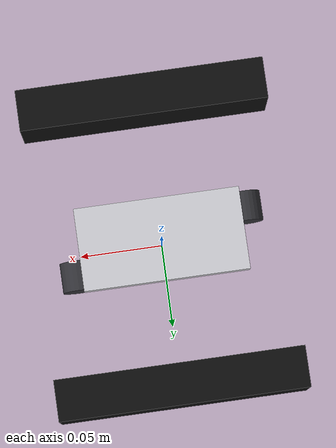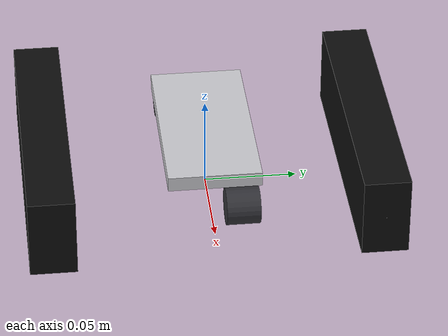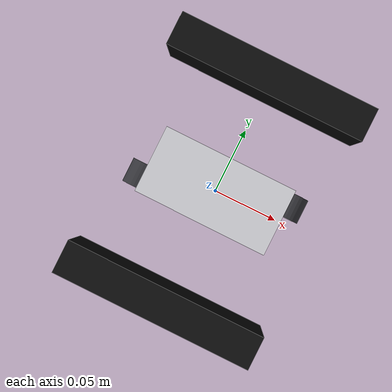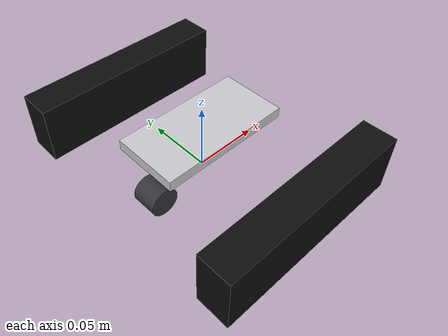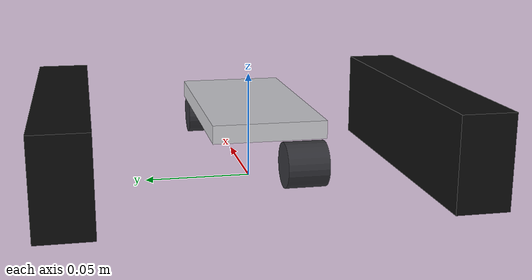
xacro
<?xml version="1.0"?>
<robot name="tank_car" xmlns:xacro="http://www.ros.org/wiki/xacro">

  <xacro:property name="pi" value="3.1415926535897931"/>

  <!-- Main dimensions (meters) -->
  <!-- Narrow center platform, with total vehicle footprint ~0.10 m wide x 0.15 m long -->
  <xacro:property name="body_length" value="0.10"/>
  <xacro:property name="body_width"  value="0.05"/>
  <xacro:property name="body_height" value="0.008"/>
  <xacro:property name="body_ground_clearance" value="0.030"/>

  <!-- Track + wheel geometry -->
  <xacro:property name="track_width"       value="0.025"/>
  <xacro:property name="wheel_radius"      value="0.022"/>
  <xacro:property name="wheel_thickness"   value="0.008"/>
  <xacro:property name="wheelbase"         value="0.106"/>
  <xacro:property name="track_loop_length" value="${wheelbase + 2.0*wheel_radius}"/>
  <xacro:property name="track_loop_height" value="${2.0*wheel_radius}"/>
  <xacro:property name="track_center_y"    value="${body_width/2.0 + track_width/2.0 + 0.05}"/>

  <!-- Derived positions -->
  <xacro:property name="body_center_z" value="${body_ground_clearance + body_height/2.0}"/>
  <xacro:property name="wheel_center_rel_z" value="${wheel_radius - body_center_z}"/>
  <xacro:property name="front_x" value="${ wheelbase/2.0}"/>
  <xacro:property name="rear_x"  value="${-wheelbase/2.0}"/>

  <!-- Decorative motors now tucked under the platform -->
  <xacro:property name="motor_radius" value="0.010"/>
  <xacro:property name="motor_length" value="0.018"/>
  <xacro:property name="motor_inset_y" value="${body_width/2.0 - motor_length/2.0 - 0.002}"/>
  <xacro:property name="motor_underbody_z" value="${-body_height/2.0 - motor_radius}"/>

  <!-- Masses -->
  <xacro:property name="body_mass"        value="0.40"/>
  <xacro:property name="wheel_mass"       value="0.03"/>
  <xacro:property name="track_mass"       value="0.05"/>
  <xacro:property name="motor_mass"       value="0.04"/>

  <!-- Materials -->
  <material name="silver">
    <color rgba="0.80 0.80 0.82 1.0"/>
  </material>
  <material name="dark_gray">
    <color rgba="0.20 0.20 0.22 1.0"/>
  </material>
  <material name="black">
    <color rgba="0.05 0.05 0.05 1.0"/>
  </material>

  <xacro:macro name="box_inertial" params="mass x y z">
    <inertial>
      <origin xyz="0 0 0" rpy="0 0 0"/>
      <mass value="${mass}"/>
      <inertia
        ixx="${mass*(y*y + z*z)/12.0}"
        ixy="0.0"
        ixz="0.0"
        iyy="${mass*(x*x + z*z)/12.0}"
        iyz="0.0"
        izz="${mass*(x*x + y*y)/12.0}"/>
    </inertial>
  </xacro:macro>

  <xacro:macro name="cylinder_inertial" params="mass radius length">
    <inertial>
      <!-- Cylinder axis is rotated onto the Y-axis to match the wheel axle direction -->
      <origin xyz="0 0 0" rpy="${pi/2} 0 0"/>
      <mass value="${mass}"/>
      <inertia
        ixx="${mass*(3.0*radius*radius + length*length)/12.0}"
        ixy="0.0"
        ixz="0.0"
        iyy="${mass*(3.0*radius*radius + length*length)/12.0}"
        iyz="0.0"
        izz="${0.5*mass*radius*radius}"/>
    </inertial>
  </xacro:macro>

  <xacro:macro name="wheel_link" params="name">
    <link name="${name}">
      <xacro:cylinder_inertial mass="${wheel_mass}" radius="${wheel_radius}" length="${wheel_thickness}"/>
      <visual>
        <origin xyz="0 0 0" rpy="${pi/2} 0 0"/>
        <geometry>
          <cylinder radius="${wheel_radius}" length="${wheel_thickness}"/>
        </geometry>
        <material name="silver"/>
      </visual>
      <collision>
        <origin xyz="0 0 0" rpy="${pi/2} 0 0"/>
        <geometry>
          <cylinder radius="${wheel_radius}" length="${wheel_thickness}"/>
        </geometry>
      </collision>
    </link>
  </xacro:macro>

  <xacro:macro name="track_link" params="name">
    <link name="${name}">
      <xacro:box_inertial mass="${track_mass}" x="${track_loop_length}" y="${track_width}" z="${track_loop_height}"/>
      <visual>
        <origin xyz="0 0 0" rpy="0 0 0"/>
        <geometry>
          <box size="${track_loop_length} ${track_width} ${track_loop_height}"/>
        </geometry>
        <material name="black"/>
      </visual>
      <collision>
        <origin xyz="0 0 0" rpy="0 0 0"/>
        <geometry>
          <box size="${track_loop_length} ${track_width} ${track_loop_height}"/>
        </geometry>
      </collision>
    </link>
  </xacro:macro>

  <xacro:macro name="motor_link" params="name">
    <link name="${name}">
      <xacro:cylinder_inertial mass="${motor_mass}" radius="${motor_radius}" length="${motor_length}"/>
      <visual>
        <origin xyz="0 0 0" rpy="${pi/2} 0 0"/>
        <geometry>
          <cylinder radius="${motor_radius}" length="${motor_length}"/>
        </geometry>
        <material name="dark_gray"/>
      </visual>
      <collision>
        <origin xyz="0 0 0" rpy="${pi/2} 0 0"/>
        <geometry>
          <cylinder radius="${motor_radius}" length="${motor_length}"/>
        </geometry>
      </collision>
    </link>
  </xacro:macro>

  <link name="base_footprint"/>

  <link name="chassis">
    <xacro:box_inertial mass="${body_mass}" x="${body_length}" y="${body_width}" z="${body_height}"/>
    <visual>
      <origin xyz="0 0 0" rpy="0 0 0"/>
      <geometry>
        <box size="${body_length} ${body_width} ${body_height}"/>
      </geometry>
      <material name="silver"/>
    </visual>
    <collision>
      <origin xyz="0 0 0" rpy="0 0 0"/>
      <geometry>
        <box size="${body_length} ${body_width} ${body_height}"/>
      </geometry>
    </collision>
  </link>

  <joint name="base_footprint_to_chassis" type="fixed">
    <parent link="base_footprint"/>
    <child link="chassis"/>
    <origin xyz="0 0 ${body_center_z}" rpy="0 0 0"/>
  </joint>

  <!-- Wheels / sprockets -->
  <xacro:wheel_link name="front_left_drive_wheel"/>
  <xacro:wheel_link name="rear_left_idler_wheel"/>
  <xacro:wheel_link name="front_right_idler_wheel"/>
  <xacro:wheel_link name="rear_right_drive_wheel"/>

  <joint name="front_left_drive_joint" type="continuous">
    <parent link="chassis"/>
    <child link="front_left_drive_wheel"/>
    <origin xyz="${front_x} ${ track_center_y} ${wheel_center_rel_z}" rpy="0 0 0"/>
    <axis xyz="0 1 0"/>
  </joint>

  <joint name="rear_left_idler_joint" type="continuous">
    <parent link="chassis"/>
    <child link="rear_left_idler_wheel"/>
    <origin xyz="${rear_x} ${ track_center_y} ${wheel_center_rel_z}" rpy="0 0 0"/>
    <axis xyz="0 1 0"/>
  </joint>

  <joint name="front_right_idler_joint" type="continuous">
    <parent link="chassis"/>
    <child link="front_right_idler_wheel"/>
    <origin xyz="${front_x} ${-track_center_y} ${wheel_center_rel_z}" rpy="0 0 0"/>
    <axis xyz="0 1 0"/>
  </joint>

  <joint name="rear_right_drive_joint" type="continuous">
    <parent link="chassis"/>
    <child link="rear_right_drive_wheel"/>
    <origin xyz="${rear_x} ${-track_center_y} ${wheel_center_rel_z}" rpy="0 0 0"/>
    <axis xyz="0 1 0"/>
  </joint>

  <!-- Simplified rigid track bodies -->
  <xacro:track_link name="left_track"/>
  <xacro:track_link name="right_track"/>

  <joint name="left_track_joint" type="fixed">
    <parent link="chassis"/>
    <child link="left_track"/>
    <origin xyz="0 ${ track_center_y} ${wheel_center_rel_z}" rpy="0 0 0"/>
  </joint>

  <joint name="right_track_joint" type="fixed">
    <parent link="chassis"/>
    <child link="right_track"/>
    <origin xyz="0 ${-track_center_y} ${wheel_center_rel_z}" rpy="0 0 0"/>
  </joint>

  <!-- Decorative motors tucked under the platform on the driven corners -->
  <xacro:motor_link name="front_left_motor"/>
  <xacro:motor_link name="rear_right_motor"/>

  <joint name="front_left_motor_joint" type="fixed">
    <parent link="chassis"/>
    <child link="front_left_motor"/>
    <origin xyz="${front_x} ${motor_inset_y} ${motor_underbody_z}" rpy="0 0 0"/>
  </joint>

  <joint name="rear_right_motor_joint" type="fixed">
    <parent link="chassis"/>
    <child link="rear_right_motor"/>
    <origin xyz="${rear_x} ${-motor_inset_y} ${motor_underbody_z}" rpy="0 0 0"/>
  </joint>

</robot>
